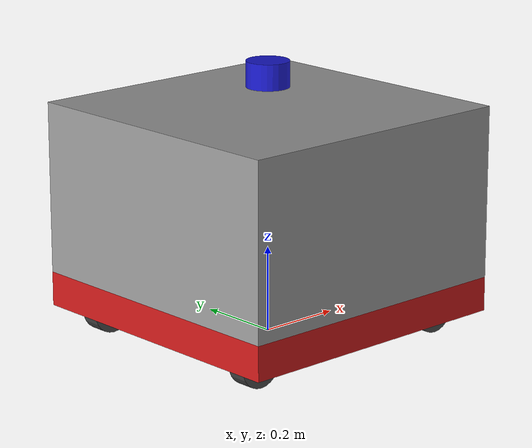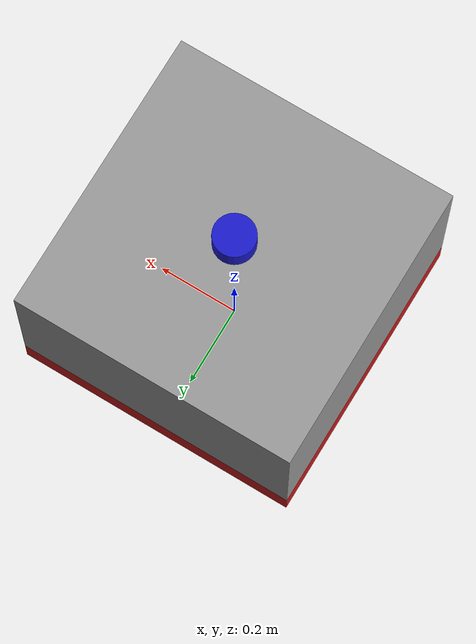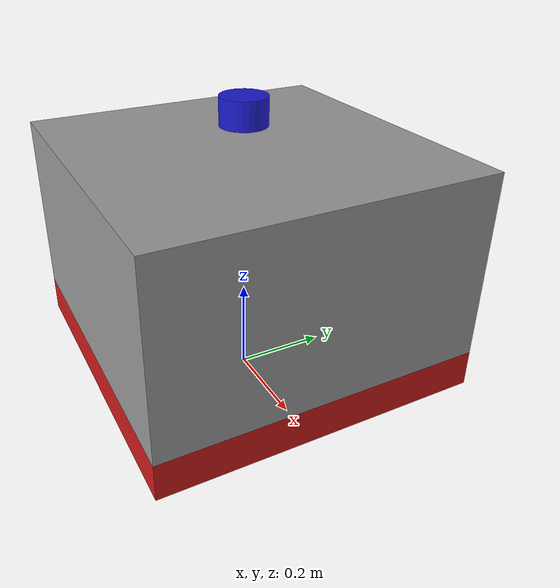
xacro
<?xml version="1.0"?>
<robot xmlns:xacro="http://www.ros.org/wiki/xacro" name="rc2026_robot">

  <!-- 是否由 planar_move 发布 odom→base_footprint TF
       (设为 false 时由 odom_drift_injector 节点替代发布, 用于注入累积里程计漂移) -->
  <xacro:arg name="publish_odom_tf" default="true"/>

  <!-- 底盘参数 (可通过 xacro 参数覆盖) -->
  <xacro:arg name="chassis_width"   default="0.70"/>
  <xacro:arg name="chassis_depth"   default="0.70"/>
  <xacro:arg name="chassis_height"  default="0.40"/>
  <xacro:arg name="wheel_radius"    default="0.053905"/>
  <xacro:arg name="wheel_width"     default="0.045"/>
  <xacro:arg name="wheel_base_x"    default="0.27"/>
  <xacro:arg name="wheel_base_y"    default="0.25"/>

  <!-- 传感器安装位置 -->
  <xacro:arg name="camera_x" default="0.05"/>
  <xacro:arg name="camera_y" default="0.0"/>
  <xacro:arg name="camera_z" default="0.45"/>
  <xacro:arg name="lidar_x"  default="0.0"/>
  <xacro:arg name="lidar_y"  default="0.0"/>
  <xacro:arg name="lidar_z"  default="0.55"/>

  <!-- 机械臂安装位置 -->
  <xacro:arg name="arm_x" default="0.0"/>
  <xacro:arg name="arm_y" default="0.0"/>
  <xacro:arg name="arm_z" default="0.05"/>

  <xacro:property name="cw"  value="$(arg chassis_width)"/>
  <xacro:property name="cd"  value="$(arg chassis_depth)"/>
  <xacro:property name="ch"  value="$(arg chassis_height)"/>
  <xacro:property name="wr"  value="$(arg wheel_radius)"/>
  <xacro:property name="ww"  value="$(arg wheel_width)"/>
  <xacro:property name="wbx" value="$(arg wheel_base_x)"/>
  <xacro:property name="wby" value="$(arg wheel_base_y)"/>

  <!-- ══════════════ 材质定义 ══════════════ -->
  <material name="grey">
    <color rgba="0.6 0.6 0.6 1.0"/>
  </material>
  <material name="dark_grey">
    <color rgba="0.3 0.3 0.3 1.0"/>
  </material>
  <material name="red">
    <color rgba="0.8 0.1 0.1 1.0"/>
  </material>
  <material name="blue">
    <color rgba="0.1 0.1 0.8 1.0"/>
  </material>
  <material name="green">
    <color rgba="0.1 0.6 0.1 1.0"/>
  </material>

  <!-- ══════════════ base_footprint ══════════════ -->
  <link name="base_footprint"/>

  <joint name="base_footprint_joint" type="fixed">
    <parent link="base_footprint"/>
    <child link="base_link"/>
    <origin xyz="0 0 ${wr}" rpy="0 0 0"/>
  </joint>

  <!-- ══════════════ base_link (底盘主体) ══════════════ -->
  <link name="base_link">
    <visual>
      <geometry>
        <box size="${cw} ${cd} 0.08"/>
      </geometry>
      <origin xyz="0 0 0.04" rpy="0 0 0"/>
      <material name="red"/>
    </visual>
    <collision>
      <geometry>
        <box size="${cw} ${cd} 0.08"/>
      </geometry>
      <origin xyz="0 0 0.04" rpy="0 0 0"/>
    </collision>
    <inertial>
      <mass value="25.0"/>
      <inertia ixx="1.0" ixy="0" ixz="0" iyy="1.0" iyz="0" izz="1.5"/>
    </inertial>
  </link>

  <!-- ══════════════ 框架上部结构 ══════════════ -->
  <link name="frame_upper">
    <visual>
      <geometry>
        <box size="${cw} ${cd} ${ch}"/>
      </geometry>
      <origin xyz="0 0 ${ch/2}" rpy="0 0 0"/>
      <material name="grey"/>
    </visual>
    <!-- collision 已移除: 避免 Gazebo 激光雷达射线命中自身框架 -->
    <inertial>
      <mass value="5.0"/>
      <origin xyz="0 0 ${ch/2}"/>
      <inertia ixx="0.3" ixy="0" ixz="0" iyy="0.3" iyz="0" izz="0.2"/>
    </inertial>
  </link>

  <joint name="frame_upper_joint" type="fixed">
    <parent link="base_link"/>
    <child link="frame_upper"/>
    <origin xyz="0 0 0.08" rpy="0 0 0"/>
  </joint>

  <!-- ══════════════ 万向轮宏定义 ══════════════ -->
  <xacro:macro name="omni_wheel" params="name x y">
    <link name="${name}_link">
      <visual>
        <geometry>
          <cylinder radius="${wr}" length="${ww}"/>
        </geometry>
        <origin xyz="0 0 0" rpy="${pi/2} 0 0"/>
        <material name="dark_grey"/>
      </visual>
      <collision>
        <geometry>
          <cylinder radius="${wr}" length="${ww}"/>
        </geometry>
        <origin xyz="0 0 0" rpy="${pi/2} 0 0"/>
      </collision>
      <inertial>
        <mass value="0.8"/>
        <inertia ixx="0.001" ixy="0" ixz="0" iyy="0.001" iyz="0" izz="0.001"/>
      </inertial>
    </link>

    <joint name="${name}_joint" type="continuous">
      <parent link="base_link"/>
      <child link="${name}_link"/>
      <origin xyz="${x} ${y} 0" rpy="0 0 0"/>
      <axis xyz="0 1 0"/>
      <dynamics damping="0.1" friction="0.05"/>
    </joint>
  </xacro:macro>

  <!-- 四个万向轮 -->
  <xacro:omni_wheel name="wheel_fl" x="${wbx}"  y="${wby}"/>
  <xacro:omni_wheel name="wheel_fr" x="${wbx}"  y="${-wby}"/>
  <xacro:omni_wheel name="wheel_rl" x="${-wbx}" y="${wby}"/>
  <xacro:omni_wheel name="wheel_rr" x="${-wbx}" y="${-wby}"/>

  <!-- ══════════════ 相机 (Intel RealSense D435i) ══════════════ -->
  <link name="camera_link">
    <visual>
      <geometry>
        <box size="0.025 0.09 0.025"/>
      </geometry>
      <material name="grey"/>
    </visual>
    <collision>
      <geometry>
        <box size="0.025 0.09 0.025"/>
      </geometry>
    </collision>
    <inertial>
      <mass value="0.072"/>
      <inertia ixx="0.00001" ixy="0" ixz="0" iyy="0.00001" iyz="0" izz="0.00001"/>
    </inertial>
  </link>

  <joint name="camera_joint" type="fixed">
    <parent link="base_link"/>
    <child link="camera_link"/>
    <origin xyz="$(arg camera_x) $(arg camera_y) $(arg camera_z)"
            rpy="0 0 0"/>
  </joint>

  <!-- D435i 光学坐标系 (Z前 X右 Y下) -->
  <link name="camera_optical_frame"/>

  <joint name="camera_optical_joint" type="fixed">
    <parent link="camera_link"/>
    <child link="camera_optical_frame"/>
    <origin xyz="0 0 0" rpy="${-pi/2} 0 ${-pi/2}"/>
  </joint>

  <!-- ══════════════ 激光雷达 (Livox Mid-360S) ══════════════ -->
  <link name="lidar_link">
    <visual>
      <geometry>
        <cylinder radius="0.05" length="0.06"/>
      </geometry>
      <material name="blue"/>
    </visual>
    <collision>
      <geometry>
        <cylinder radius="0.05" length="0.06"/>
      </geometry>
    </collision>
    <inertial>
      <mass value="0.265"/>
      <inertia ixx="0.0001" ixy="0" ixz="0" iyy="0.0001" iyz="0" izz="0.0001"/>
    </inertial>
  </link>

  <joint name="lidar_joint" type="fixed">
    <parent link="base_link"/>
    <child link="lidar_link"/>
    <origin xyz="$(arg lidar_x) $(arg lidar_y) $(arg lidar_z)"
            rpy="0 0 0"/>
  </joint>

  <!-- ══════════════ 机械臂底座 (占位符, 待组员替换) ══════════════ -->
  <link name="arm_base_link">
    <visual>
      <geometry>
        <cylinder radius="0.03" length="0.02"/>
      </geometry>
      <material name="green"/>
    </visual>
    <collision>
      <geometry>
        <cylinder radius="0.03" length="0.02"/>
      </geometry>
    </collision>
    <inertial>
      <mass value="0.1"/>
      <inertia ixx="0.00001" ixy="0" ixz="0" iyy="0.00001" iyz="0" izz="0.00001"/>
    </inertial>
  </link>

  <joint name="arm_base_joint" type="fixed">
    <parent link="base_link"/>
    <child link="arm_base_link"/>
    <origin xyz="$(arg arm_x) $(arg arm_y) $(arg arm_z)"
            rpy="0 0 0"/>
  </joint>

  <!--
    机械臂关节链占位:
    arm_base_link 之后的关节由机械臂组员在此处扩展.
    接口约定:
      - 末端执行器 link 命名: arm_end_effector_link
      - 夹爪 link 命名: gripper_link
      - 所有关节使用 revolute 类型
  -->

  <!-- ══════════════════════════════════════════════════════════
       Gazebo 仿真插件
       ══════════════════════════════════════════════════════════ -->

  <!-- Gazebo 物理属性: 底盘底部摩擦 -->
  <gazebo reference="base_link">
    <mu1>0.2</mu1>
    <mu2>0.2</mu2>
    <material>Gazebo/Red</material>
  </gazebo>

  <gazebo reference="frame_upper">
    <material>Gazebo/Grey</material>
  </gazebo>

  <!-- 轮子高摩擦 -->
  <xacro:macro name="wheel_gazebo" params="name">
    <gazebo reference="${name}_link">
      <mu1>1.5</mu1>
      <mu2>1.5</mu2>
      <material>Gazebo/DarkGrey</material>
    </gazebo>
  </xacro:macro>
  <xacro:wheel_gazebo name="wheel_fl"/>
  <xacro:wheel_gazebo name="wheel_fr"/>
  <xacro:wheel_gazebo name="wheel_rl"/>
  <xacro:wheel_gazebo name="wheel_rr"/>

  <!-- ── 全向底盘驱动 (planar_move) ──
       订阅 /cmd_vel (Twist), 直接驱动机器人平移+旋转
       发布 /odom (Odometry) + odom→base_footprint TF -->
  <gazebo>
    <plugin name="planar_move" filename="libgazebo_ros_planar_move.so">
      <ros>
        <remapping>cmd_vel:=/cmd_vel</remapping>
        <remapping>odom:=/odom</remapping>
      </ros>
      <update_rate>50</update_rate>
      <publish_rate>50</publish_rate>
      <publish_odom>true</publish_odom>
      <publish_odom_tf>$(arg publish_odom_tf)</publish_odom_tf>
      <odometry_frame>odom</odometry_frame>
      <robot_base_frame>base_footprint</robot_base_frame>
    </plugin>
  </gazebo>

  <!-- ── RGB 相机仿真 ── -->
  <gazebo reference="camera_link">
    <material>Gazebo/Grey</material>
    <sensor type="camera" name="rgb_camera">
      <update_rate>30</update_rate>
      <camera>
        <horizontal_fov>1.211</horizontal_fov>
        <image>
          <width>1280</width>
          <height>720</height>
          <format>R8G8B8</format>
        </image>
        <clip>
          <near>0.1</near>
          <far>10.0</far>
        </clip>
      </camera>
      <plugin name="camera_controller" filename="libgazebo_ros_camera.so">
        <ros>
          <remapping>image_raw:=/camera/camera/color/image_raw</remapping>
          <remapping>camera_info:=/camera/camera/color/camera_info</remapping>
        </ros>
        <frame_name>camera_optical_frame</frame_name>
      </plugin>
    </sensor>
  </gazebo>

  <!-- ── 3D 激光雷达 (模拟 Livox Mid-360S, 输出 PointCloud2) ── -->
  <gazebo reference="lidar_link">
    <material>Gazebo/Blue</material>
    <sensor type="ray" name="lidar_3d">
      <update_rate>10</update_rate>
      <visualize>false</visualize>
      <ray>
        <scan>
          <horizontal>
            <samples>360</samples>
            <resolution>1</resolution>
            <min_angle>-3.14159</min_angle>
            <max_angle>3.14159</max_angle>
          </horizontal>
          <vertical>
            <samples>16</samples>
            <resolution>1</resolution>
            <min_angle>-0.1309</min_angle>
            <max_angle>0.6109</max_angle>
          </vertical>
        </scan>
        <range>
          <min>0.1</min>
          <max>40.0</max>
          <resolution>0.01</resolution>
        </range>
        <noise>
          <type>gaussian</type>
          <mean>0.0</mean>
          <stddev>0.01</stddev>
        </noise>
      </ray>
      <plugin name="lidar_3d_controller" filename="libgazebo_ros_ray_sensor.so">
        <ros>
          <remapping>~/out:=/livox/lidar</remapping>
        </ros>
        <output_type>sensor_msgs/PointCloud2</output_type>
        <frame_name>lidar_link</frame_name>
      </plugin>
    </sensor>
  </gazebo>

  <!-- ── 2D 激光扫描 (从3D点云提取水平层, 供 AMCL 定位) ── -->
  <gazebo reference="lidar_link">
    <sensor type="ray" name="lidar_2d">
      <update_rate>10</update_rate>
      <visualize>false</visualize>
      <ray>
        <scan>
          <horizontal>
            <samples>360</samples>
            <resolution>1</resolution>
            <min_angle>-3.14159</min_angle>
            <max_angle>3.14159</max_angle>
          </horizontal>
        </scan>
        <range>
          <min>0.1</min>
          <max>40.0</max>
          <resolution>0.01</resolution>
        </range>
      </ray>
      <plugin name="lidar_2d_controller" filename="libgazebo_ros_ray_sensor.so">
        <ros>
          <remapping>~/out:=/scan</remapping>
        </ros>
        <output_type>sensor_msgs/LaserScan</output_type>
        <frame_name>lidar_link</frame_name>
      </plugin>
    </sensor>
  </gazebo>

</robot>
